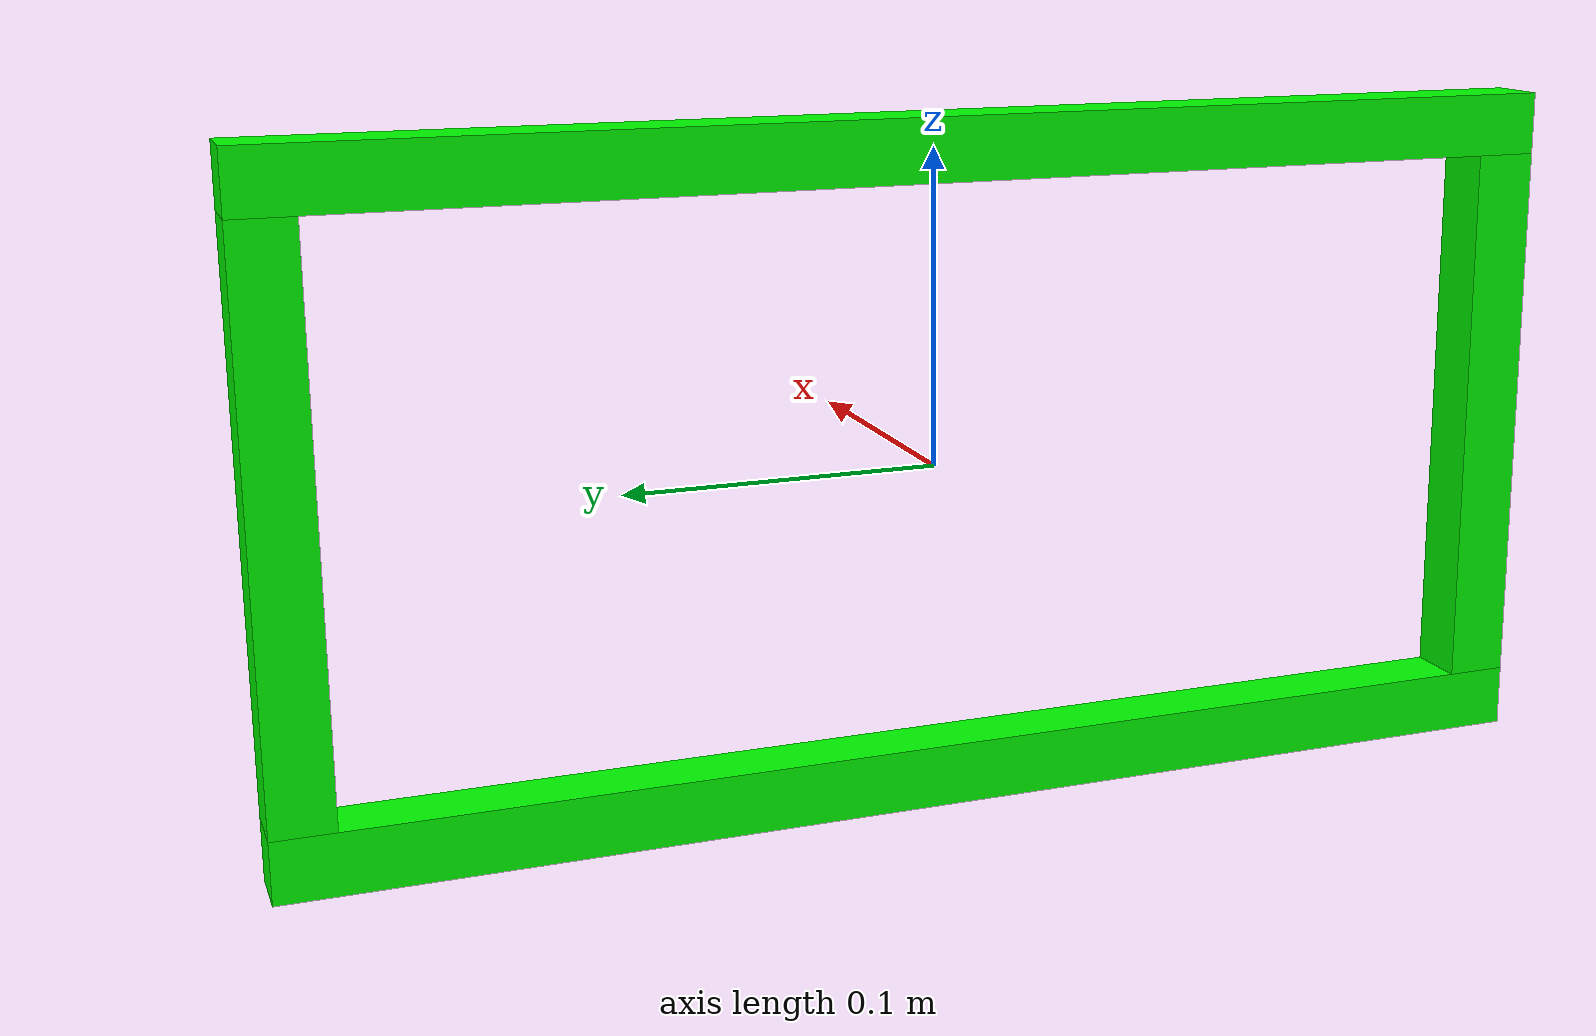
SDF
<?xml version="1.0" ?>
<sdf version="1.5">
<model name="frame_green">

<static>true</static>

<link name='framelink'>
    <!-- Marco de 40x20 cms. Borde de 3cms. -->

    <visual name='up'>
        <pose>0 0 0.10 0 0 0</pose>
        <geometry>
          <box>
            <size>0.02 0.42 0.02</size>
          </box>
        </geometry>
        <material>
          <ambient>0 1 0 1</ambient>
          <diffuse>0 1 0 1</diffuse>
        </material>
    </visual>

    <collision name='up_c'>
        <pose>0 0 0.10 0 0 0</pose>
        <geometry>
          <box>
            <size>0.02 0.42 0.02</size>
          </box>
        </geometry>
        <surface>
          <friction>
            <ode>
              <mu>0.1</mu>
              <mu2>0.2</mu2>
              <slip1>1.0</slip1>
              <slip2>1.0</slip2>
            </ode>
          </friction>
        </surface>
    </collision>

    <visual name='down'>
        <pose>0 0 -0.10 0 0 0</pose>
        <geometry>
          <box>
            <size>0.02 0.42 0.02</size>
          </box>
        </geometry>
        <material>
          <ambient>0 1 0 1</ambient>
          <diffuse>0 1 0 1</diffuse>
        </material>
    </visual>

    <collision name='down_c'>
        <pose>0 0 -0.10 0 0 0</pose>
        <geometry>
          <box>
            <size>0.02 0.42 0.02</size>
          </box>
        </geometry>
        <surface>
          <friction>
            <ode>
              <mu>0.1</mu>
              <mu2>0.2</mu2>
              <slip1>1.0</slip1>
              <slip2>1.0</slip2>
            </ode>
          </friction>
        </surface>
    </collision>

    <visual name='left'>
        <pose>0 -0.20 0 0 0 0</pose>
        <geometry>
          <box>
            <size>0.02 0.02 0.18</size>
          </box>
        </geometry>
        <material>
          <ambient>0 1 0 1</ambient>
          <diffuse>0 1 0 1</diffuse>
        </material>
    </visual>

    <collision name='left_c'>
        <pose>0 -0.20 0 0 0 0</pose>
        <geometry>
          <box>
            <size>0.02 0.02 0.18</size>
          </box>
        </geometry>
        <surface>
          <friction>
            <ode>
              <mu>0.1</mu>
              <mu2>0.2</mu2>
              <slip1>1.0</slip1>
              <slip2>1.0</slip2>
            </ode>
          </friction>
        </surface>
    </collision>

    <visual name='right'>
        <pose>0 0.20 0 0 0 0</pose>
        <geometry>
          <box>
            <size>0.02 0.02 0.18</size>
          </box>
        </geometry>
        <material>
          <ambient>0 1 0 1</ambient>
          <diffuse>0 1 0 1</diffuse>
        </material>
    </visual>

    <collision name='right_c'>
        <pose>0 0.20 0 0 0 0</pose>
        <geometry>
          <box>
            <size>0.02 0.02 0.18</size>
          </box>
        </geometry>
        <surface>
          <friction>
            <ode>
              <mu>0.1</mu>
              <mu2>0.2</mu2>
              <slip1>1.0</slip1>
              <slip2>1.0</slip2>
            </ode>
          </friction>
        </surface>
    </collision>

</link>

</model>

</sdf>
